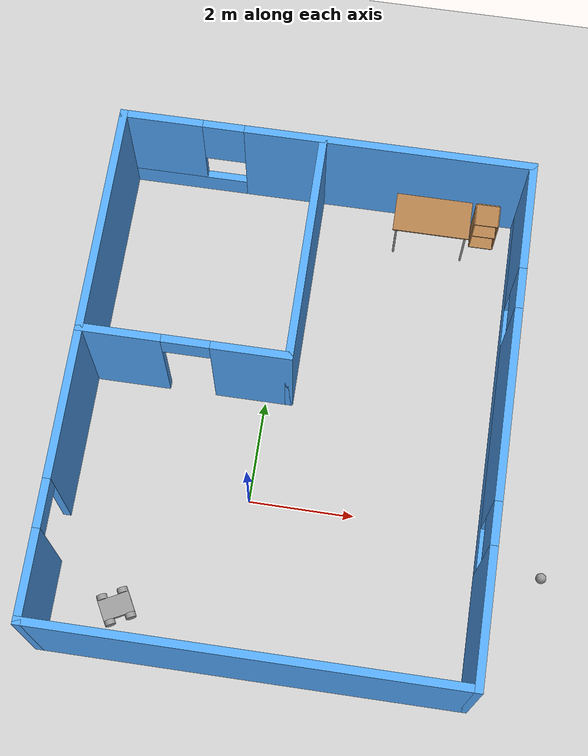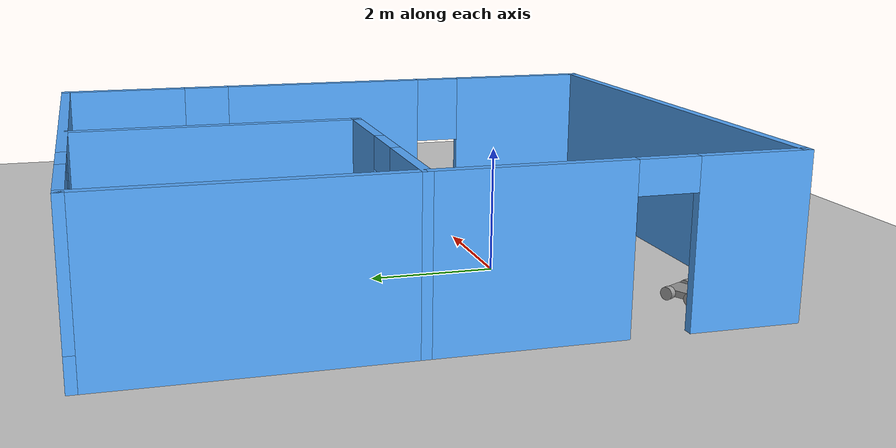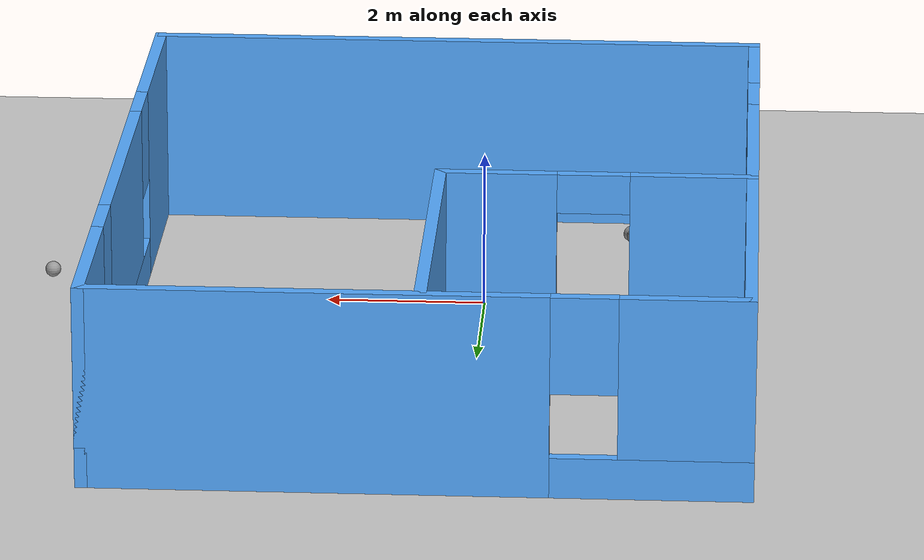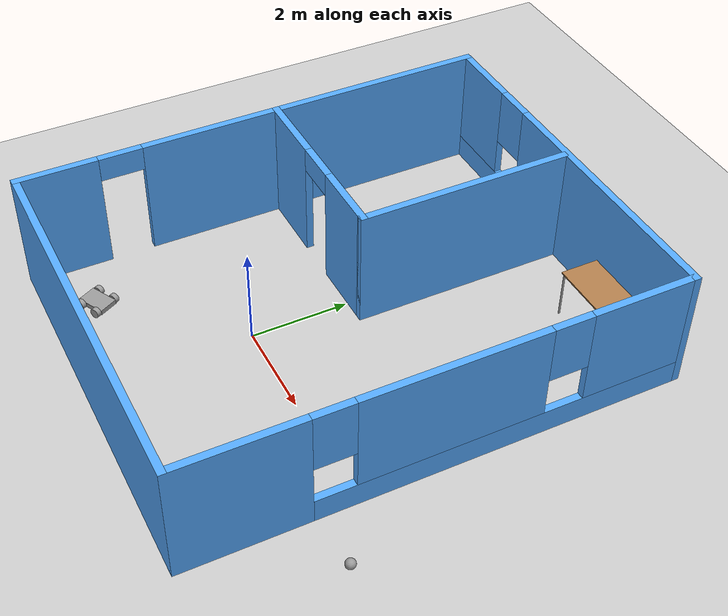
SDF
<sdf version="1.6">
 <world name="default">
  <plugin name="hello" filename="libhello.so"/>
  <light name="sun" type="directional">
   <pose>0 0 10 0 -0 0</pose>
   <diffuse>0.8 0.8 0.8 1</diffuse>
   <specular>0.2 0.2 0.2 1</specular>
   <attenuation>
    <range>1000</range>
    <constant>0.9</constant>
    <linear>0.01</linear>
    <quadratic>0.001</quadratic>
   </attenuation>
   <direction>-0.5 0.1 -0.9</direction>
  </light>
  <model name="ground_plane">
   <static>1</static>
   <link name="link">
    <collision name="collision">
     <geometry><plane><normal>0 0 1</normal><size>100 100</size></plane></geometry>
     <surface>
      <contact><collide_bitmask>65535</collide_bitmask></contact>
      <friction><ode><mu>100</mu><mu2>50</mu2></ode></friction>
     </surface>
    </collision>
    <visual name="visual">
     <cast_shadows>0</cast_shadows>
     <geometry><plane><normal>0 0 1</normal><size>100 100</size></plane></geometry>
     <material>
      <script><uri>file://media/materials/scripts/gazebo.material</uri><name>Gazebo/Grey</name></script>
     </material>
    </visual>
   </link>
  </model>
  <gravity>0 0 -9.8</gravity>
  <magnetic_field>6e-06 2.3e-05 -4.2e-05</magnetic_field>
  <atmosphere type="adiabatic"/>
  <physics name="default_physics" default="0" type="ode">
   <max_step_size>0.001</max_step_size>
   <real_time_factor>1</real_time_factor>
   <real_time_update_rate>1000</real_time_update_rate>
  </physics>
  <scene><ambient>0.4 0.4 0.4 1</ambient><background>0.7 0.7 0.7 1</background><shadows>1</shadows></scene>
  <spherical_coordinates>
   <surface_model>EARTH_WGS84</surface_model>
   <latitude_deg>0</latitude_deg>
   <longitude_deg>0</longitude_deg>
   <elevation>0</elevation>
   <heading_deg>0</heading_deg>
  </spherical_coordinates>
  <model name="mybuilding">
   <pose>0.52652 1.64515 0 0 -0 0</pose>
   <link name="Wall_0">
    <pose>-3.925 0 0 0 0 -1.5708</pose>
    <visual name="Wall_0_Visual_0">
     <pose>-1.29935 0 1.25 0 -0 0</pose>
     <geometry><box><size>7.4013 0.15 2.5</size></box></geometry>
     <material>
      <script><uri>file://media/materials/scripts/gazebo.material</uri><name>Gazebo/Grey</name></script>
      <ambient>0.333333 0.666667 1 1</ambient>
     </material>
     <meta><layer>0</layer></meta>
    </visual>
    <collision name="Wall_0_Collision_0">
     <geometry><box><size>7.4013 0.15 2.5</size></box></geometry>
     <pose>-1.29935 0 1.25 0 -0 0</pose>
    </collision>
    <visual name="Wall_0_Visual_1">
     <pose>4.15065 0 1.25 0 -0 0</pose>
     <geometry><box><size>1.6987 0.15 2.5</size></box></geometry>
     <material>
      <script><uri>file://media/materials/scripts/gazebo.material</uri><name>Gazebo/Grey</name></script>
      <ambient>0.333333 0.666667 1 1</ambient>
     </material>
     <meta><layer>0</layer></meta>
    </visual>
    <collision name="Wall_0_Collision_1">
     <geometry><box><size>1.6987 0.15 2.5</size></box></geometry>
     <pose>4.15065 0 1.25 0 -0 0</pose>
    </collision>
    <visual name="Wall_0_Visual_2">
     <pose>2.8513 0 2.25 0 -0 0</pose>
     <geometry><box><size>0.9 0.15 0.5</size></box></geometry>
     <material>
      <script><uri>file://media/materials/scripts/gazebo.material</uri><name>Gazebo/Grey</name></script>
      <ambient>0.333333 0.666667 1 1</ambient>
     </material>
     <meta><layer>0</layer></meta>
    </visual>
    <collision name="Wall_0_Collision_2">
     <geometry><box><size>0.9 0.15 0.5</size></box></geometry>
     <pose>2.8513 0 2.25 0 -0 0</pose>
    </collision>
   </link>
   <link name="Wall_1">
    <collision name="Wall_1_Collision">
     <geometry><box><size>8 0.15 2.5</size></box></geometry>
     <pose>0 0 1.25 0 -0 0</pose>
    </collision>
    <visual name="Wall_1_Visual">
     <pose>0 0 1.25 0 -0 0</pose>
     <geometry><box><size>8 0.15 2.5</size></box></geometry>
     <material>
      <script><uri>file://media/materials/scripts/gazebo.material</uri><name>Gazebo/Grey</name></script>
      <ambient>0.333333 0.666667 1 1</ambient>
     </material>
     <meta><layer>0</layer></meta>
    </visual>
    <pose>0 -4.925 0 0 -0 0</pose>
   </link>
   <link name="Wall_11">
    <pose>-2 0.4814 0 0 -0 0</pose>
    <visual name="Wall_11_Visual_0">
     <pose>-1.20885 0 1.25 0 -0 0</pose>
     <geometry><box><size>1.5823 0.15 2.5</size></box></geometry>
     <material>
      <script><uri>file://media/materials/scripts/gazebo.material</uri><name>Gazebo/Grey</name></script>
      <ambient>0.333333 0.666667 1 1</ambient>
     </material>
     <meta><layer>0</layer></meta>
    </visual>
    <collision name="Wall_11_Collision_0">
     <geometry><box><size>1.5823 0.15 2.5</size></box></geometry>
     <pose>-1.20885 0 1.25 0 -0 0</pose>
    </collision>
    <visual name="Wall_11_Visual_1">
     <pose>1.24115 0 1.25 0 -0 0</pose>
     <geometry><box><size>1.5177 0.15 2.5</size></box></geometry>
     <material>
      <script><uri>file://media/materials/scripts/gazebo.material</uri><name>Gazebo/Grey</name></script>
      <ambient>0.333333 0.666667 1 1</ambient>
     </material>
     <meta><layer>0</layer></meta>
    </visual>
    <collision name="Wall_11_Collision_1">
     <geometry><box><size>1.5177 0.15 2.5</size></box></geometry>
     <pose>1.24115 0 1.25 0 -0 0</pose>
    </collision>
    <visual name="Wall_11_Visual_2">
     <pose>0.0323 0 2.25 0 -0 0</pose>
     <geometry><box><size>0.9 0.15 0.5</size></box></geometry>
     <material>
      <script><uri>file://media/materials/scripts/gazebo.material</uri><name>Gazebo/Grey</name></script>
      <ambient>0.333333 0.666667 1 1</ambient>
     </material>
     <meta><layer>0</layer></meta>
    </visual>
    <collision name="Wall_11_Collision_2">
     <geometry><box><size>0.9 0.15 0.5</size></box></geometry>
     <pose>0.0323 0 2.25 0 -0 0</pose>
    </collision>
   </link>
   <link name="Wall_12">
    <collision name="Wall_12_Collision">
     <geometry><box><size>4.5 0.15 2.5</size></box></geometry>
     <pose>0 0 1.25 0 -0 0</pose>
    </collision>
    <visual name="Wall_12_Visual">
     <pose>0 0 1.25 0 -0 0</pose>
     <geometry><box><size>4.5 0.15 2.5</size></box></geometry>
     <material>
      <script><uri>file://media/materials/scripts/gazebo.material</uri><name>Gazebo/Grey</name></script>
      <ambient>0.333333 0.666667 1 1</ambient>
     </material>
     <meta><layer>0</layer></meta>
    </visual>
    <pose>-0.075 2.6564 0 0 -0 1.5708</pose>
   </link>
   <link name="Wall_2">
    <pose>3.925 0 0 0 -0 1.5708</pose>
    <visual name="Wall_2_Visual_0">
     <pose>-3.7289 0 1.25 0 -0 0</pose>
     <geometry><box><size>2.5422 0.15 2.5</size></box></geometry>
     <material>
      <script><uri>file://media/materials/scripts/gazebo.material</uri><name>Gazebo/Grey</name></script>
      <ambient>0.333333 0.666667 1 1</ambient>
     </material>
     <meta><layer>0</layer></meta>
    </visual>
    <collision name="Wall_2_Collision_0">
     <geometry><box><size>2.5422 0.15 2.5</size></box></geometry>
     <pose>-3.7289 0 1.25 0 -0 0</pose>
    </collision>
    <visual name="Wall_2_Visual_1">
     <pose>1.2711 0 0.25 0 -0 0</pose>
     <geometry><box><size>7.4578 0.15 0.5</size></box></geometry>
     <material>
      <script><uri>file://media/materials/scripts/gazebo.material</uri><name>Gazebo/Grey</name></script>
      <ambient>0.333333 0.666667 1 1</ambient>
     </material>
     <meta><layer>0</layer></meta>
    </visual>
    <collision name="Wall_2_Collision_1">
     <geometry><box><size>7.4578 0.15 0.5</size></box></geometry>
     <pose>1.2711 0 0.25 0 -0 0</pose>
    </collision>
    <visual name="Wall_2_Visual_2">
     <pose>0.177225 0 1.5 0 -0 0</pose>
     <geometry><box><size>3.67005 0.15 2</size></box></geometry>
     <material>
      <script><uri>file://media/materials/scripts/gazebo.material</uri><name>Gazebo/Grey</name></script>
      <ambient>0.333333 0.666667 1 1</ambient>
     </material>
     <meta><layer>0</layer></meta>
    </visual>
    <collision name="Wall_2_Collision_2">
     <geometry><box><size>3.67005 0.15 2</size></box></geometry>
     <pose>0.177225 0 1.5 0 -0 0</pose>
    </collision>
    <visual name="Wall_2_Visual_3">
     <pose>3.90612 0 1.5 0 -0 0</pose>
     <geometry><box><size>2.18775 0.15 2</size></box></geometry>
     <material>
      <script><uri>file://media/materials/scripts/gazebo.material</uri><name>Gazebo/Grey</name></script>
      <ambient>0.333333 0.666667 1 1</ambient>
     </material>
     <meta><layer>0</layer></meta>
    </visual>
    <collision name="Wall_2_Collision_3">
     <geometry><box><size>2.18775 0.15 2</size></box></geometry>
     <pose>3.90612 0 1.5 0 -0 0</pose>
    </collision>
    <visual name="Wall_2_Visual_4">
     <pose>-2.0578 0 1.9 0 -0 0</pose>
     <geometry><box><size>0.8 0.15 1.2</size></box></geometry>
     <material>
      <script><uri>file://media/materials/scripts/gazebo.material</uri><name>Gazebo/Grey</name></script>
      <ambient>0.333333 0.666667 1 1</ambient>
     </material>
     <meta><layer>0</layer></meta>
    </visual>
    <collision name="Wall_2_Collision_4">
     <geometry><box><size>0.8 0.15 1.2</size></box></geometry>
     <pose>-2.0578 0 1.9 0 -0 0</pose>
    </collision>
    <visual name="Wall_2_Visual_5">
     <pose>2.41225 0 1.9 0 -0 0</pose>
     <geometry><box><size>0.8 0.15 1.2</size></box></geometry>
     <material>
      <script><uri>file://media/materials/scripts/gazebo.material</uri><name>Gazebo/Grey</name></script>
      <ambient>0.333333 0.666667 1 1</ambient>
     </material>
     <meta><layer>0</layer></meta>
    </visual>
    <collision name="Wall_2_Collision_5">
     <geometry><box><size>0.8 0.15 1.2</size></box></geometry>
     <pose>2.41225 0 1.9 0 -0 0</pose>
    </collision>
   </link>
   <link name="Wall_3">
    <pose>0 4.925 0 0 -0 3.14159</pose>
    <visual name="Wall_3_Visual_0">
     <pose>-1.20293 0 1.25 0 -0 0</pose>
     <geometry><box><size>5.59415 0.15 2.5</size></box></geometry>
     <material>
      <script><uri>file://media/materials/scripts/gazebo.material</uri><name>Gazebo/Grey</name></script>
      <ambient>0.333333 0.666667 1 1</ambient>
     </material>
     <meta><layer>0</layer></meta>
    </visual>
    <collision name="Wall_3_Collision_0">
     <geometry><box><size>5.59415 0.15 2.5</size></box></geometry>
     <pose>-1.20293 0 1.25 0 -0 0</pose>
    </collision>
    <visual name="Wall_3_Visual_1">
     <pose>2.79707 0 0.25 0 -0 0</pose>
     <geometry><box><size>2.40585 0.15 0.5</size></box></geometry>
     <material>
      <script><uri>file://media/materials/scripts/gazebo.material</uri><name>Gazebo/Grey</name></script>
      <ambient>0.333333 0.666667 1 1</ambient>
     </material>
     <meta><layer>0</layer></meta>
    </visual>
    <collision name="Wall_3_Collision_1">
     <geometry><box><size>2.40585 0.15 0.5</size></box></geometry>
     <pose>2.79707 0 0.25 0 -0 0</pose>
    </collision>
    <visual name="Wall_3_Visual_2">
     <pose>3.19707 0 1.5 0 -0 0</pose>
     <geometry><box><size>1.60585 0.15 2</size></box></geometry>
     <material>
      <script><uri>file://media/materials/scripts/gazebo.material</uri><name>Gazebo/Grey</name></script>
      <ambient>0.333333 0.666667 1 1</ambient>
     </material>
     <meta><layer>0</layer></meta>
    </visual>
    <collision name="Wall_3_Collision_2">
     <geometry><box><size>1.60585 0.15 2</size></box></geometry>
     <pose>3.19707 0 1.5 0 -0 0</pose>
    </collision>
    <visual name="Wall_3_Visual_3">
     <pose>1.99415 0 1.9 0 -0 0</pose>
     <geometry><box><size>0.8 0.15 1.2</size></box></geometry>
     <material>
      <script><uri>file://media/materials/scripts/gazebo.material</uri><name>Gazebo/Grey</name></script>
      <ambient>0.333333 0.666667 1 1</ambient>
     </material>
     <meta><layer>0</layer></meta>
    </visual>
    <collision name="Wall_3_Collision_3">
     <geometry><box><size>0.8 0.15 1.2</size></box></geometry>
     <pose>1.99415 0 1.9 0 -0 0</pose>
    </collision>
   </link>
   <static>1</static>
  </model>
  <model name="myrobot">
   <link name="link_0">
    <pose>0 1e-06 -8e-06 0 -0 0</pose>
    <inertial>
     <mass>1</mass>
     <inertia>
      <ixx>0.166667</ixx>
      <ixy>0</ixy>
      <ixz>0</ixz>
      <iyy>0.166667</iyy>
      <iyz>0</iyz>
      <izz>0.166667</izz>
     </inertia>
    </inertial>
    <visual name="visual">
     <geometry><box><size>0.6 0.4 0.1</size></box></geometry>
     <material>
      <lighting>1</lighting>
      <script><uri>file://media/materials/scripts/gazebo.material</uri><name>Gazebo/Grey</name></script>
      <shader type="pixel"><normal_map>__default__</normal_map></shader>
      <ambient>0.3 0.3 0.3 1</ambient>
      <diffuse>0.7 0.7 0.7 1</diffuse>
      <specular>0.01 0.01 0.01 1</specular>
      <emissive>0 0 0 1</emissive>
     </material>
    </visual>
    <collision name="collision">
     <geometry><box><size>0.6 0.4 0.1</size></box></geometry>
     <surface>
      <friction>
       <ode><mu>1</mu><mu2>1</mu2><fdir1>0 0 0</fdir1><slip1>0</slip1><slip2>0</slip2></ode>
       <torsional>
        <coefficient>1</coefficient>
        <patch_radius>0</patch_radius>
        <surface_radius>0</surface_radius>
        <use_patch_radius>1</use_patch_radius>
        <ode><slip>0</slip></ode>
       </torsional>
      </friction>
      <bounce><restitution_coefficient>0</restitution_coefficient><threshold>1e+06</threshold></bounce>
      <contact>
       <collide_without_contact>0</collide_without_contact>
       <collide_without_contact_bitmask>1</collide_without_contact_bitmask>
       <collide_bitmask>1</collide_bitmask>
       <ode>
        <soft_cfm>0</soft_cfm>
        <soft_erp>0.2</soft_erp>
        <kp>1e+13</kp>
        <kd>1</kd>
        <max_vel>0.01</max_vel>
        <min_depth>0</min_depth>
       </ode>
       <bullet>
        <split_impulse>1</split_impulse>
        <split_impulse_penetration_threshold>-0.01</split_impulse_penetration_threshold>
        <soft_cfm>0</soft_cfm>
        <soft_erp>0.2</soft_erp>
        <kp>1e+13</kp>
        <kd>1</kd>
       </bullet>
      </contact>
     </surface>
    </collision>
   </link>
   <link name="link_1">
    <pose>-0.2 -0.250013 3.1e-05 1.5707 -0 0</pose>
    <inertial>
     <mass>1</mass>
     <inertia><ixx>0.145833</ixx><ixy>0</ixy><ixz>0</ixz><iyy>0.145833</iyy><iyz>0</iyz><izz>0.125</izz></inertia>
    </inertial>
    <visual name="visual">
     <geometry><cylinder><radius>0.1</radius><length>0.1</length></cylinder></geometry>
     <material>
      <lighting>1</lighting>
      <script><uri>file://media/materials/scripts/gazebo.material</uri><name>Gazebo/Grey</name></script>
      <shader type="pixel"><normal_map>__default__</normal_map></shader>
      <ambient>0.3 0.3 0.3 1</ambient>
      <diffuse>0.7 0.7 0.7 1</diffuse>
      <specular>0.01 0.01 0.01 1</specular>
      <emissive>0 0 0 1</emissive>
     </material>
    </visual>
    <collision name="collision">
     <geometry><cylinder><radius>0.1</radius><length>0.1</length></cylinder></geometry>
     <surface>
      <friction>
       <ode><mu>1</mu><mu2>1</mu2><fdir1>0 0 0</fdir1><slip1>0</slip1><slip2>0</slip2></ode>
       <torsional>
        <coefficient>1</coefficient>
        <patch_radius>0</patch_radius>
        <surface_radius>0</surface_radius>
        <use_patch_radius>1</use_patch_radius>
        <ode><slip>0</slip></ode>
       </torsional>
      </friction>
      <bounce><restitution_coefficient>0</restitution_coefficient><threshold>1e+06</threshold></bounce>
      <contact>
       <collide_without_contact>0</collide_without_contact>
       <collide_without_contact_bitmask>1</collide_without_contact_bitmask>
       <collide_bitmask>1</collide_bitmask>
       <ode>
        <soft_cfm>0</soft_cfm>
        <soft_erp>0.2</soft_erp>
        <kp>1e+13</kp>
        <kd>1</kd>
        <max_vel>0.01</max_vel>
        <min_depth>0</min_depth>
       </ode>
       <bullet>
        <split_impulse>1</split_impulse>
        <split_impulse_penetration_threshold>-0.01</split_impulse_penetration_threshold>
        <soft_cfm>0</soft_cfm>
        <soft_erp>0.2</soft_erp>
        <kp>1e+13</kp>
        <kd>1</kd>
       </bullet>
      </contact>
     </surface>
    </collision>
   </link>
   <link name="link_1_clone">
    <pose>-0.2 0.25001 -8e-06 1.5707 -0 0</pose>
    <inertial>
     <mass>1</mass>
     <inertia><ixx>0.145833</ixx><ixy>0</ixy><ixz>0</ixz><iyy>0.145833</iyy><iyz>0</iyz><izz>0.125</izz></inertia>
    </inertial>
    <visual name="visual">
     <geometry><cylinder><radius>0.1</radius><length>0.1</length></cylinder></geometry>
     <material>
      <lighting>1</lighting>
      <script><uri>file://media/materials/scripts/gazebo.material</uri><name>Gazebo/Grey</name></script>
      <shader type="pixel"><normal_map>__default__</normal_map></shader>
      <ambient>0.3 0.3 0.3 1</ambient>
      <diffuse>0.7 0.7 0.7 1</diffuse>
      <specular>0.01 0.01 0.01 1</specular>
      <emissive>0 0 0 1</emissive>
     </material>
    </visual>
    <collision name="collision">
     <geometry><cylinder><radius>0.1</radius><length>0.1</length></cylinder></geometry>
     <surface>
      <friction>
       <ode><mu>1</mu><mu2>1</mu2><fdir1>0 0 0</fdir1><slip1>0</slip1><slip2>0</slip2></ode>
       <torsional>
        <coefficient>1</coefficient>
        <patch_radius>0</patch_radius>
        <surface_radius>0</surface_radius>
        <use_patch_radius>1</use_patch_radius>
        <ode><slip>0</slip></ode>
       </torsional>
      </friction>
      <bounce><restitution_coefficient>0</restitution_coefficient><threshold>1e+06</threshold></bounce>
      <contact>
       <collide_without_contact>0</collide_without_contact>
       <collide_without_contact_bitmask>1</collide_without_contact_bitmask>
       <collide_bitmask>1</collide_bitmask>
       <ode>
        <soft_cfm>0</soft_cfm>
        <soft_erp>0.2</soft_erp>
        <kp>1e+13</kp>
        <kd>1</kd>
        <max_vel>0.01</max_vel>
        <min_depth>0</min_depth>
       </ode>
       <bullet>
        <split_impulse>1</split_impulse>
        <split_impulse_penetration_threshold>-0.01</split_impulse_penetration_threshold>
        <soft_cfm>0</soft_cfm>
        <soft_erp>0.2</soft_erp>
        <kp>1e+13</kp>
        <kd>1</kd>
       </bullet>
      </contact>
     </surface>
    </collision>
   </link>
   <link name="link_1_clone_clone">
    <pose>0.2 0.25001 -8e-06 1.5707 -0 0</pose>
    <inertial>
     <mass>1</mass>
     <inertia><ixx>0.145833</ixx><ixy>0</ixy><ixz>0</ixz><iyy>0.145833</iyy><iyz>0</iyz><izz>0.125</izz></inertia>
    </inertial>
    <visual name="visual">
     <geometry><cylinder><radius>0.1</radius><length>0.1</length></cylinder></geometry>
     <material>
      <lighting>1</lighting>
      <script><uri>file://media/materials/scripts/gazebo.material</uri><name>Gazebo/Grey</name></script>
      <shader type="pixel"><normal_map>__default__</normal_map></shader>
      <ambient>0.3 0.3 0.3 1</ambient>
      <diffuse>0.7 0.7 0.7 1</diffuse>
      <specular>0.01 0.01 0.01 1</specular>
      <emissive>0 0 0 1</emissive>
     </material>
    </visual>
    <collision name="collision">
     <geometry><cylinder><radius>0.1</radius><length>0.1</length></cylinder></geometry>
     <surface>
      <friction>
       <ode><mu>1</mu><mu2>1</mu2><fdir1>0 0 0</fdir1><slip1>0</slip1><slip2>0</slip2></ode>
       <torsional>
        <coefficient>1</coefficient>
        <patch_radius>0</patch_radius>
        <surface_radius>0</surface_radius>
        <use_patch_radius>1</use_patch_radius>
        <ode><slip>0</slip></ode>
       </torsional>
      </friction>
      <bounce><restitution_coefficient>0</restitution_coefficient><threshold>1e+06</threshold></bounce>
      <contact>
       <collide_without_contact>0</collide_without_contact>
       <collide_without_contact_bitmask>1</collide_without_contact_bitmask>
       <collide_bitmask>1</collide_bitmask>
       <ode>
        <soft_cfm>0</soft_cfm>
        <soft_erp>0.2</soft_erp>
        <kp>1e+13</kp>
        <kd>1</kd>
        <max_vel>0.01</max_vel>
        <min_depth>0</min_depth>
       </ode>
       <bullet>
        <split_impulse>1</split_impulse>
        <split_impulse_penetration_threshold>-0.01</split_impulse_penetration_threshold>
        <soft_cfm>0</soft_cfm>
        <soft_erp>0.2</soft_erp>
        <kp>1e+13</kp>
        <kd>1</kd>
       </bullet>
      </contact>
     </surface>
    </collision>
   </link>
   <link name="link_1_clone_clone_0">
    <pose>0.2 -0.250009 -8e-06 1.5707 -0 0</pose>
    <inertial>
     <mass>1</mass>
     <inertia><ixx>0.145833</ixx><ixy>0</ixy><ixz>0</ixz><iyy>0.145833</iyy><iyz>0</iyz><izz>0.125</izz></inertia>
    </inertial>
    <visual name="visual">
     <geometry><cylinder><radius>0.1</radius><length>0.1</length></cylinder></geometry>
     <material>
      <lighting>1</lighting>
      <script><uri>file://media/materials/scripts/gazebo.material</uri><name>Gazebo/Grey</name></script>
      <shader type="pixel"><normal_map>__default__</normal_map></shader>
      <ambient>0.3 0.3 0.3 1</ambient>
      <diffuse>0.7 0.7 0.7 1</diffuse>
      <specular>0.01 0.01 0.01 1</specular>
      <emissive>0 0 0 1</emissive>
     </material>
    </visual>
    <collision name="collision">
     <geometry><cylinder><radius>0.1</radius><length>0.1</length></cylinder></geometry>
     <surface>
      <friction>
       <ode><mu>1</mu><mu2>1</mu2><fdir1>0 0 0</fdir1><slip1>0</slip1><slip2>0</slip2></ode>
       <torsional>
        <coefficient>1</coefficient>
        <patch_radius>0</patch_radius>
        <surface_radius>0</surface_radius>
        <use_patch_radius>1</use_patch_radius>
        <ode><slip>0</slip></ode>
       </torsional>
      </friction>
      <bounce><restitution_coefficient>0</restitution_coefficient><threshold>1e+06</threshold></bounce>
      <contact>
       <collide_without_contact>0</collide_without_contact>
       <collide_without_contact_bitmask>1</collide_without_contact_bitmask>
       <collide_bitmask>1</collide_bitmask>
       <ode>
        <soft_cfm>0</soft_cfm>
        <soft_erp>0.2</soft_erp>
        <kp>1e+13</kp>
        <kd>1</kd>
        <max_vel>0.01</max_vel>
        <min_depth>0</min_depth>
       </ode>
       <bullet>
        <split_impulse>1</split_impulse>
        <split_impulse_penetration_threshold>-0.01</split_impulse_penetration_threshold>
        <soft_cfm>0</soft_cfm>
        <soft_erp>0.2</soft_erp>
        <kp>1e+13</kp>
        <kd>1</kd>
       </bullet>
      </contact>
     </surface>
    </collision>
   </link>
   <joint name="link_0_JOINT_0" type="revolute">
    <parent>link_0</parent>
    <child>link_1</child>
    <axis>
     <xyz>0 0 1</xyz>
     <use_parent_model_frame>0</use_parent_model_frame>
     <limit>
      <lower>-1.79769e+308</lower>
      <upper>1.79769e+308</upper>
      <effort>-1</effort>
      <velocity>-1</velocity>
     </limit>
     <dynamics>
      <spring_reference>0</spring_reference>
      <spring_stiffness>0</spring_stiffness>
      <damping>0</damping>
      <friction>0</friction>
     </dynamics>
    </axis>
    <physics>
     <ode><limit><cfm>0</cfm><erp>0.2</erp></limit><suspension><cfm>0</cfm><erp>0.2</erp></suspension></ode>
    </physics>
   </joint>
   <joint name="link_0_JOINT_2" type="revolute">
    <parent>link_0</parent>
    <child>link_1_clone</child>
    <axis>
     <xyz>0 0 1</xyz>
     <use_parent_model_frame>0</use_parent_model_frame>
     <limit>
      <lower>-1.79769e+308</lower>
      <upper>1.79769e+308</upper>
      <effort>-1</effort>
      <velocity>-1</velocity>
     </limit>
     <dynamics>
      <spring_reference>0</spring_reference>
      <spring_stiffness>0</spring_stiffness>
      <damping>0</damping>
      <friction>0</friction>
     </dynamics>
    </axis>
    <physics>
     <ode><limit><cfm>0</cfm><erp>0.2</erp></limit><suspension><cfm>0</cfm><erp>0.2</erp></suspension></ode>
    </physics>
   </joint>
   <joint name="link_0_JOINT_3" type="revolute">
    <parent>link_0</parent>
    <child>link_1_clone_clone_0</child>
    <axis>
     <xyz>0 0 1</xyz>
     <use_parent_model_frame>0</use_parent_model_frame>
     <limit>
      <lower>-1.79769e+308</lower>
      <upper>1.79769e+308</upper>
      <effort>-1</effort>
      <velocity>-1</velocity>
     </limit>
     <dynamics>
      <spring_reference>0</spring_reference>
      <spring_stiffness>0</spring_stiffness>
      <damping>0</damping>
      <friction>0</friction>
     </dynamics>
    </axis>
    <physics>
     <ode><limit><cfm>0</cfm><erp>0.2</erp></limit><suspension><cfm>0</cfm><erp>0.2</erp></suspension></ode>
    </physics>
   </joint>
   <joint name="link_0_JOINT_4" type="revolute">
    <parent>link_0</parent>
    <child>link_1_clone_clone</child>
    <axis>
     <xyz>0 0 1</xyz>
     <use_parent_model_frame>0</use_parent_model_frame>
     <limit>
      <lower>-1.79769e+308</lower>
      <upper>1.79769e+308</upper>
      <effort>-1</effort>
      <velocity>-1</velocity>
     </limit>
     <dynamics>
      <spring_reference>0</spring_reference>
      <spring_stiffness>0</spring_stiffness>
      <damping>0</damping>
      <friction>0</friction>
     </dynamics>
    </axis>
    <physics>
     <ode><limit><cfm>0</cfm><erp>0.2</erp></limit><suspension><cfm>0</cfm><erp>0.2</erp></suspension></ode>
    </physics>
   </joint>
   <static>0</static>
   <pose>-2.13484 -2.37583 0.1 7.1e-05 -8.7e-05 0.487877</pose>
  </model>
  <model name="table">
   <static>1</static>
   <link name="link">
    <collision name="surface">
     <pose>0 0 1 0 -0 0</pose>
     <geometry><box><size>1.5 0.8 0.03</size></box></geometry>
     <surface><friction><ode><mu>0.6</mu><mu2>0.6</mu2></ode></friction></surface>
    </collision>
    <visual name="visual1">
     <pose>0 0 1 0 -0 0</pose>
     <geometry><box><size>1.5 0.8 0.03</size></box></geometry>
     <material>
      <script><uri>file://media/materials/scripts/gazebo.material</uri><name>Gazebo/Wood</name></script>
     </material>
    </visual>
    <collision name="front_left_leg">
     <pose>0.68 0.38 0.5 0 -0 0</pose>
     <geometry><cylinder><radius>0.02</radius><length>1</length></cylinder></geometry>
    </collision>
    <visual name="front_left_leg">
     <pose>0.68 0.38 0.5 0 -0 0</pose>
     <geometry><cylinder><radius>0.02</radius><length>1</length></cylinder></geometry>
     <material>
      <script><uri>file://media/materials/scripts/gazebo.material</uri><name>Gazebo/Grey</name></script>
     </material>
    </visual>
    <collision name="front_right_leg">
     <pose>0.68 -0.38 0.5 0 -0 0</pose>
     <geometry><cylinder><radius>0.02</radius><length>1</length></cylinder></geometry>
    </collision>
    <visual name="front_right_leg">
     <pose>0.68 -0.38 0.5 0 -0 0</pose>
     <geometry><cylinder><radius>0.02</radius><length>1</length></cylinder></geometry>
     <material>
      <script><uri>file://media/materials/scripts/gazebo.material</uri><name>Gazebo/Grey</name></script>
     </material>
    </visual>
    <collision name="back_right_leg">
     <pose>-0.68 -0.38 0.5 0 -0 0</pose>
     <geometry><cylinder><radius>0.02</radius><length>1</length></cylinder></geometry>
    </collision>
    <visual name="back_right_leg">
     <pose>-0.68 -0.38 0.5 0 -0 0</pose>
     <geometry><cylinder><radius>0.02</radius><length>1</length></cylinder></geometry>
     <material>
      <script><uri>file://media/materials/scripts/gazebo.material</uri><name>Gazebo/Grey</name></script>
     </material>
    </visual>
    <collision name="back_left_leg">
     <pose>-0.68 0.38 0.5 0 -0 0</pose>
     <geometry><cylinder><radius>0.02</radius><length>1</length></cylinder></geometry>
    </collision>
    <visual name="back_left_leg">
     <pose>-0.68 0.38 0.5 0 -0 0</pose>
     <geometry><cylinder><radius>0.02</radius><length>1</length></cylinder></geometry>
     <material>
      <script><uri>file://media/materials/scripts/gazebo.material</uri><name>Gazebo/Grey</name></script>
     </material>
    </visual>
   </link>
   <pose>2.73765 6.02135 0 0 -0 0</pose>
  </model>
  <model name="cabinet">
   <static>1</static>
   <link name="cabinet_bottom_plate">
    <inertial>
     <pose>0 0 -1 0 -0 0</pose>
     <inertia><ixx>2.05</ixx><ixy>0</ixy><ixz>0</ixz><iyy>2.05</iyy><iyz>0</iyz><izz>2.05</izz></inertia>
     <mass>25</mass>
    </inertial>
    <collision name="cabinet_bottom_plate_geom">
     <pose>0 0 0.01 0 -0 0</pose>
     <geometry><box><size>0.45 0.45 0.02</size></box></geometry>
    </collision>
    <visual name="cabinet_bottom_plate_geom_visual">
     <pose>0 0 0.01 0 -0 0</pose>
     <geometry><box><size>0.45 0.45 0.02</size></box></geometry>
     <material>
      <script><uri>file://media/materials/scripts/gazebo.material</uri><name>Gazebo/Wood</name></script>
     </material>
    </visual>
    <collision name="cabinet_bottom_plate_geom_cabinet_back_plate">
     <pose>0.235 0 0.51 0 -0 0</pose>
     <geometry><box><size>0.02 0.45 1.02</size></box></geometry>
    </collision>
    <visual name="cabinet_bottom_plate_geom_cabinet_back_plate_visual">
     <pose>0.235 0 0.51 0 -0 0</pose>
     <geometry><box><size>0.02 0.45 1.02</size></box></geometry>
     <material>
      <script><uri>file://media/materials/scripts/gazebo.material</uri><name>Gazebo/Wood</name></script>
     </material>
    </visual>
    <collision name="cabinet_bottom_plate_geom_cabinet_left_plate">
     <pose>0 0.235 0.51 0 -0 0</pose>
     <geometry><box><size>0.45 0.02 1.02</size></box></geometry>
    </collision>
    <visual name="cabinet_bottom_plate_geom_cabinet_left_plate_visual">
     <pose>0 0.235 0.51 0 -0 0</pose>
     <geometry><box><size>0.45 0.02 1.02</size></box></geometry>
     <material>
      <script><uri>file://media/materials/scripts/gazebo.material</uri><name>Gazebo/Wood</name></script>
     </material>
    </visual>
    <collision name="cabinet_bottom_plate_geom_cabinet_middle_plate">
     <pose>0 0 0.51 0 -0 0</pose>
     <geometry><box><size>0.45 0.45 0.02</size></box></geometry>
    </collision>
    <visual name="cabinet_bottom_plate_geom_cabinet_middle_plate_visual">
     <pose>0 0 0.51 0 -0 0</pose>
     <geometry><box><size>0.45 0.45 0.02</size></box></geometry>
     <material>
      <script><uri>file://media/materials/scripts/gazebo.material</uri><name>Gazebo/Wood</name></script>
     </material>
    </visual>
    <collision name="cabinet_bottom_plate_geom_cabinet_right_plate">
     <pose>0 -0.235 0.51 0 -0 0</pose>
     <geometry><box><size>0.45 0.02 1.02</size></box></geometry>
    </collision>
    <visual name="cabinet_bottom_plate_geom_cabinet_right_plate_visual">
     <pose>0 -0.235 0.51 0 -0 0</pose>
     <geometry><box><size>0.45 0.02 1.02</size></box></geometry>
     <material>
      <script><uri>file://media/materials/scripts/gazebo.material</uri><name>Gazebo/Wood</name></script>
     </material>
    </visual>
    <collision name="cabinet_bottom_plate_geom_cabinet_top_plate">
     <pose>0 0 1.01 0 -0 0</pose>
     <geometry><box><size>0.45 0.45 0.02</size></box></geometry>
    </collision>
    <visual name="cabinet_bottom_plate_geom_cabinet_top_plate_visual">
     <pose>0 0 1.01 0 -0 0</pose>
     <geometry><box><size>0.45 0.45 0.02</size></box></geometry>
     <material>
      <script><uri>file://media/materials/scripts/gazebo.material</uri><name>Gazebo/Wood</name></script>
     </material>
    </visual>
   </link>
   <pose>3.80258 6.18239 0 0 -0 1.57522</pose>
  </model>
  <model name="my_ball_0">
   <link name="link_0">
    <inertial>
     <mass>1</mass>
     <inertia><ixx>0.1</ixx><ixy>0</ixy><ixz>0</ixz><iyy>0.1</iyy><iyz>0</iyz><izz>0.1</izz></inertia>
    </inertial>
    <visual name="visual">
     <geometry><sphere><radius>0.1</radius></sphere></geometry>
     <material>
      <lighting>1</lighting>
      <script><uri>file://media/materials/scripts/gazebo.material</uri><name>Gazebo/Grey</name></script>
      <shader type="pixel"><normal_map>__default__</normal_map></shader>
      <ambient>1 1 1 1</ambient>
      <diffuse>1 1 1 1</diffuse>
      <specular>1 1 1 1</specular>
      <emissive>0 0 0 1</emissive>
     </material>
    </visual>
    <collision name="collision">
     <geometry><sphere><radius>0.1</radius></sphere></geometry>
     <surface>
      <friction>
       <ode><mu>1</mu><mu2>1</mu2><fdir1>0 0 0</fdir1><slip1>0</slip1><slip2>0</slip2></ode>
       <torsional>
        <coefficient>1</coefficient>
        <patch_radius>0</patch_radius>
        <surface_radius>0</surface_radius>
        <use_patch_radius>1</use_patch_radius>
        <ode><slip>0</slip></ode>
       </torsional>
      </friction>
      <bounce><restitution_coefficient>0</restitution_coefficient><threshold>1e+06</threshold></bounce>
      <contact>
       <collide_without_contact>0</collide_without_contact>
       <collide_without_contact_bitmask>1</collide_without_contact_bitmask>
       <collide_bitmask>1</collide_bitmask>
       <ode>
        <soft_cfm>0</soft_cfm>
        <soft_erp>0.2</soft_erp>
        <kp>1e+13</kp>
        <kd>1</kd>
        <max_vel>0.01</max_vel>
        <min_depth>0</min_depth>
       </ode>
       <bullet>
        <split_impulse>1</split_impulse>
        <split_impulse_penetration_threshold>-0.01</split_impulse_penetration_threshold>
        <soft_cfm>0</soft_cfm>
        <soft_erp>0.2</soft_erp>
        <kp>1e+13</kp>
        <kd>1</kd>
       </bullet>
      </contact>
     </surface>
    </collision>
   </link>
   <static>0</static>
   <pose>5.63108 -0.692085 0.1 0 -0 0</pose>
  </model>
 </world>
</sdf>
